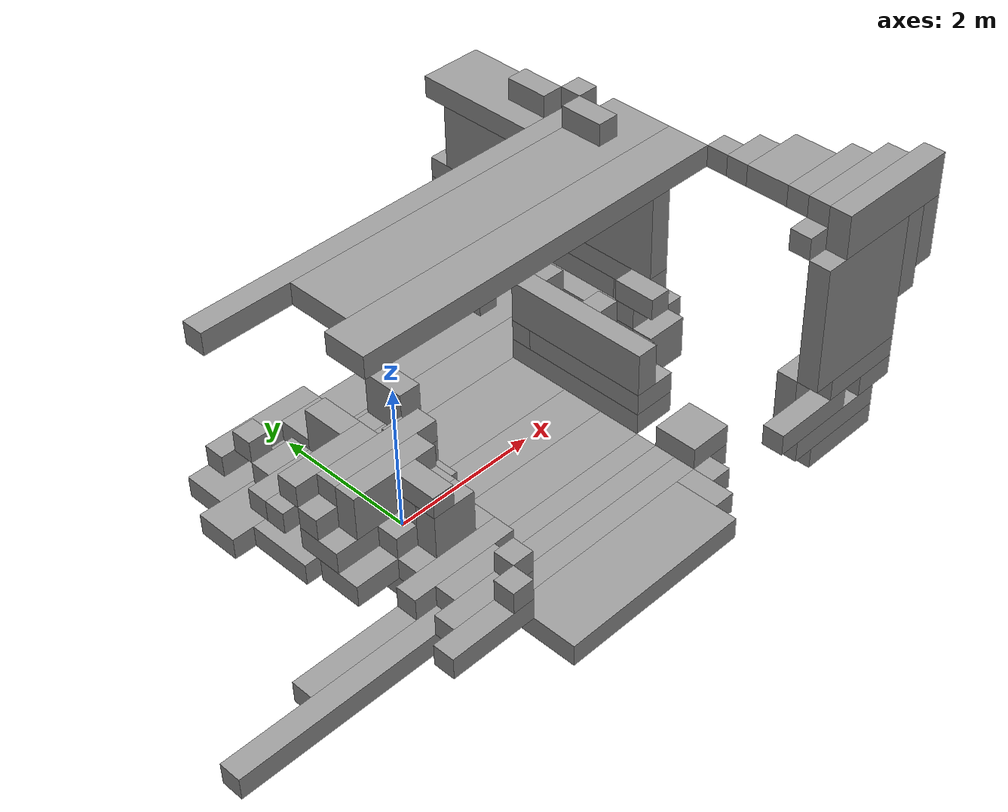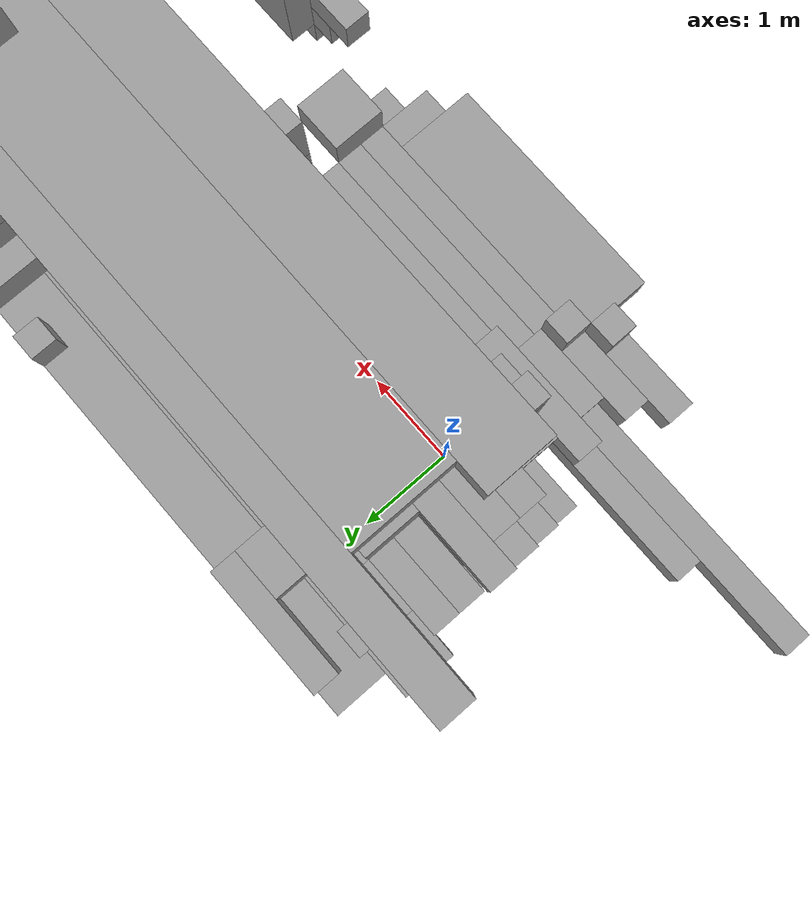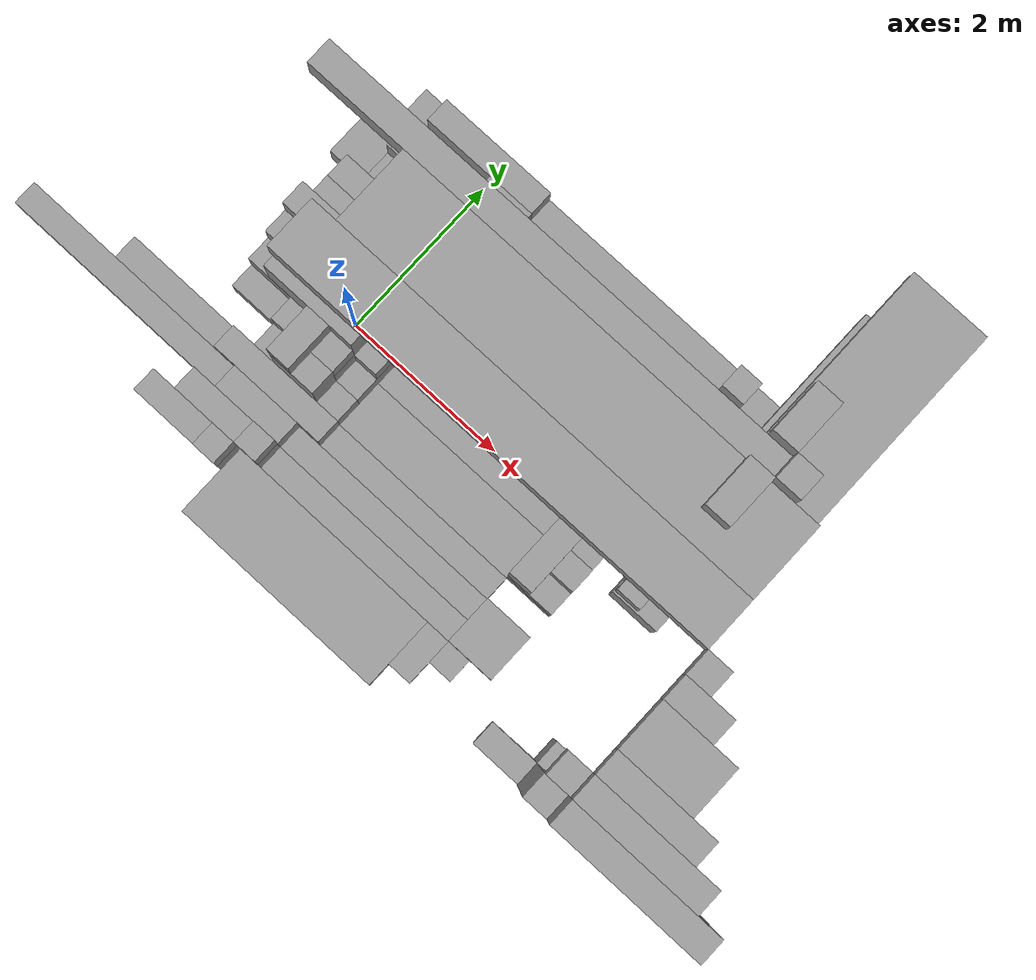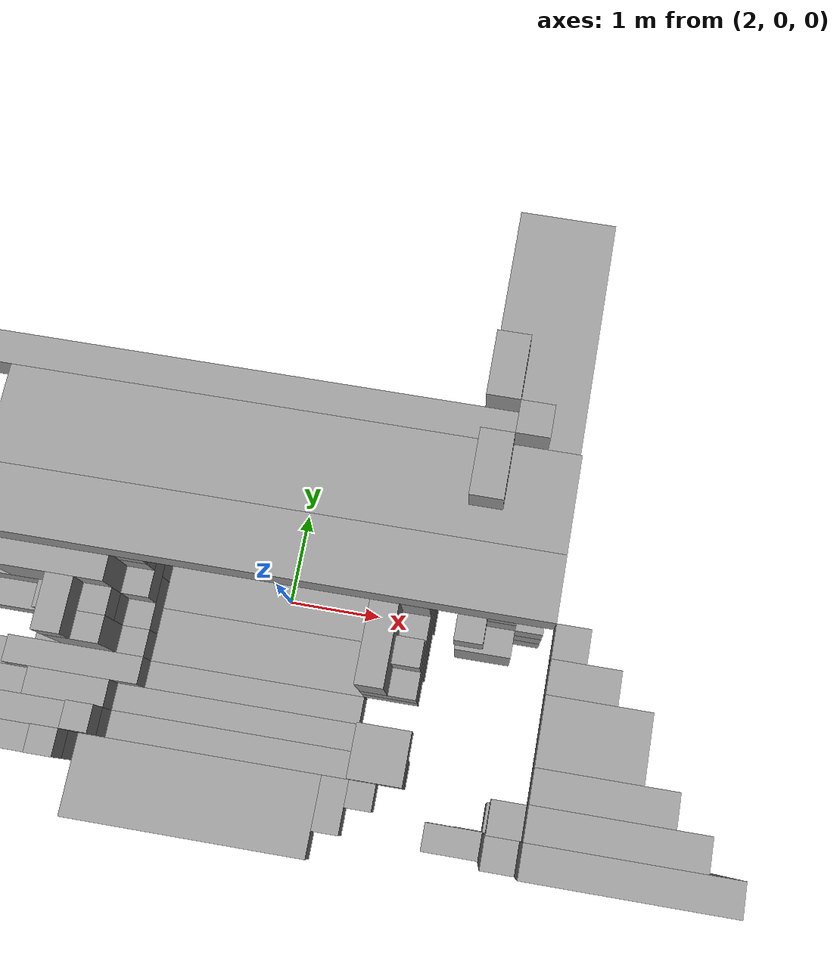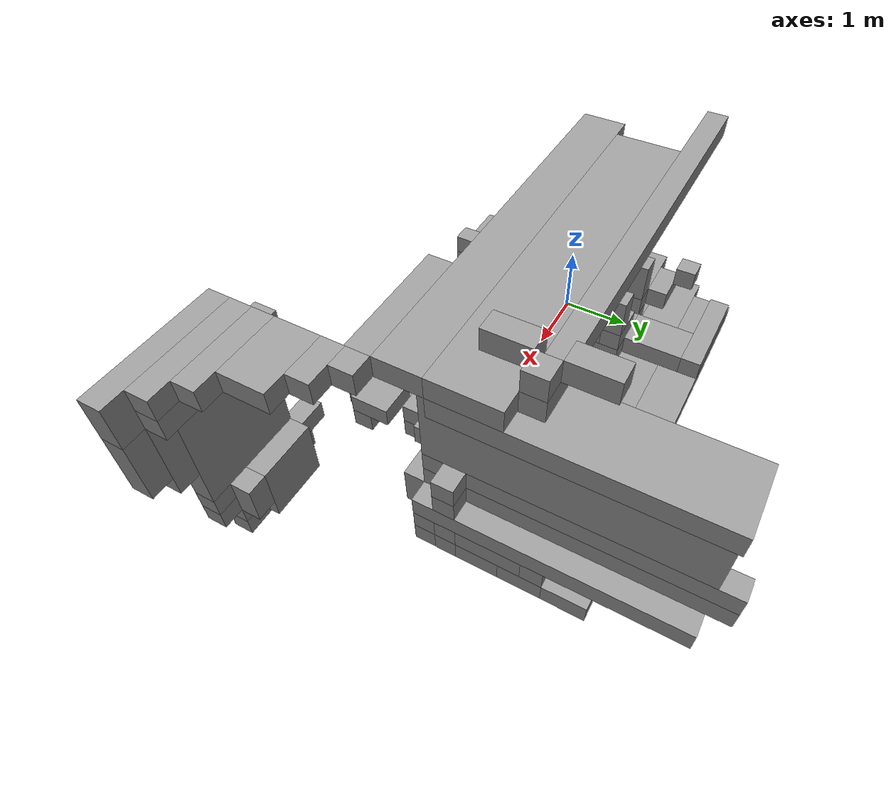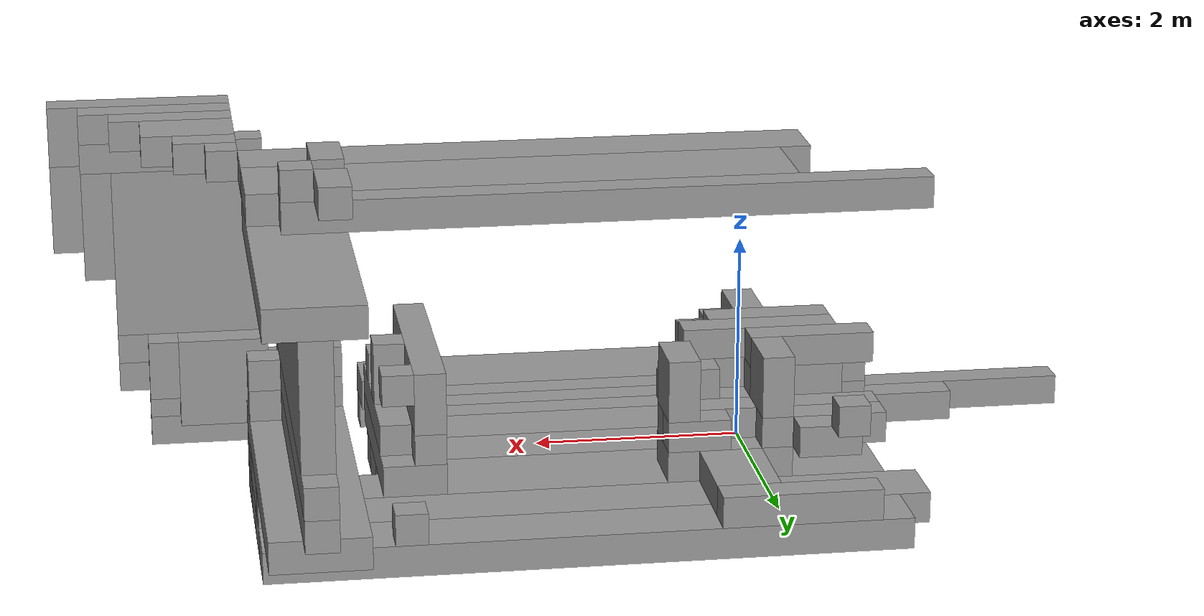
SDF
<sdf version="1.6">
 <world name="bt_world">
  <include><uri>model://sun</uri></include>
  <model name="obstacle_1845">
   <static>true</static>
   <pose>-0.3 -1.3499999999999999 -0.15 0 0 0</pose>
   <link name="link">
    <collision name="collision"><geometry><box><size>6.6 0.3 0.3</size></box></geometry></collision>
    <visual name="visual">
     <geometry><box><size>6.6 0.3 0.3</size></box></geometry>
     <material><ambient>0.5 0.5 0.5 1</ambient><diffuse>0.6 0.6 0.6 1</diffuse></material>
    </visual>
   </link>
  </model>
  <model name="obstacle_1883">
   <static>true</static>
   <pose>0.3 -1.05 -0.15 0 0 0</pose>
   <link name="link">
    <collision name="collision">
     <geometry><box><size>5.3999999999999995 0.3 0.3</size></box></geometry>
    </collision>
    <visual name="visual">
     <geometry><box><size>5.3999999999999995 0.3 0.3</size></box></geometry>
     <material><ambient>0.5 0.5 0.5 1</ambient><diffuse>0.6 0.6 0.6 1</diffuse></material>
    </visual>
   </link>
  </model>
  <model name="obstacle_1921">
   <static>true</static>
   <pose>1.65 1.5 -0.15 0 0 0</pose>
   <link name="link">
    <collision name="collision"><geometry><box><size>6.3 0.6 0.3</size></box></geometry></collision>
    <visual name="visual">
     <geometry><box><size>6.3 0.6 0.3</size></box></geometry>
     <material><ambient>0.5 0.5 0.5 1</ambient><diffuse>0.6 0.6 0.6 1</diffuse></material>
    </visual>
   </link>
  </model>
  <model name="obstacle_1924">
   <static>true</static>
   <pose>1.5 1.3499999999999999 2.85 0 0 0</pose>
   <link name="link">
    <collision name="collision"><geometry><box><size>6.0 0.3 0.3</size></box></geometry></collision>
    <visual name="visual">
     <geometry><box><size>6.0 0.3 0.3</size></box></geometry>
     <material><ambient>0.5 0.5 0.5 1</ambient><diffuse>0.6 0.6 0.6 1</diffuse></material>
    </visual>
   </link>
  </model>
  <model name="obstacle_1967">
   <static>true</static>
   <pose>-0.6 -1.95 0.15 0 0 0</pose>
   <link name="link">
    <collision name="collision"><geometry><box><size>1.2 0.3 0.3</size></box></geometry></collision>
    <visual name="visual">
     <geometry><box><size>1.2 0.3 0.3</size></box></geometry>
     <material><ambient>0.5 0.5 0.5 1</ambient><diffuse>0.6 0.6 0.6 1</diffuse></material>
    </visual>
   </link>
  </model>
  <model name="obstacle_1968">
   <static>true</static>
   <pose>-0.3 -0.3 0.15 0 0 0</pose>
   <link name="link">
    <collision name="collision">
     <geometry><box><size>1.7999999999999998 0.6 0.3</size></box></geometry>
    </collision>
    <visual name="visual">
     <geometry><box><size>1.7999999999999998 0.6 0.3</size></box></geometry>
     <material><ambient>0.5 0.5 0.5 1</ambient><diffuse>0.6 0.6 0.6 1</diffuse></material>
    </visual>
   </link>
  </model>
  <model name="obstacle_1969">
   <static>true</static>
   <pose>-0.3 0.0 0.44999999999999996 0 0 0</pose>
   <link name="link">
    <collision name="collision">
     <geometry><box><size>1.7999999999999998 0.6 0.3</size></box></geometry>
    </collision>
    <visual name="visual">
     <geometry><box><size>1.7999999999999998 0.6 0.3</size></box></geometry>
     <material><ambient>0.5 0.5 0.5 1</ambient><diffuse>0.6 0.6 0.6 1</diffuse></material>
    </visual>
   </link>
  </model>
  <model name="obstacle_1971">
   <static>true</static>
   <pose>-0.3 0.15 0.75 0 0 0</pose>
   <link name="link">
    <collision name="collision">
     <geometry><box><size>1.7999999999999998 0.3 0.3</size></box></geometry>
    </collision>
    <visual name="visual">
     <geometry><box><size>1.7999999999999998 0.3 0.3</size></box></geometry>
     <material><ambient>0.5 0.5 0.5 1</ambient><diffuse>0.6 0.6 0.6 1</diffuse></material>
    </visual>
   </link>
  </model>
  <model name="obstacle_1972">
   <static>true</static>
   <pose>1.2 0.75 -0.15 0 0 0</pose>
   <link name="link">
    <collision name="collision">
     <geometry><box><size>4.8 0.8999999999999999 0.3</size></box></geometry>
    </collision>
    <visual name="visual">
     <geometry><box><size>4.8 0.8999999999999999 0.3</size></box></geometry>
     <material><ambient>0.5 0.5 0.5 1</ambient><diffuse>0.6 0.6 0.6 1</diffuse></material>
    </visual>
   </link>
  </model>
  <model name="obstacle_1973">
   <static>true</static>
   <pose>-0.6 0.44999999999999996 1.05 0 0 0</pose>
   <link name="link">
    <collision name="collision"><geometry><box><size>1.2 0.3 0.3</size></box></geometry></collision>
    <visual name="visual">
     <geometry><box><size>1.2 0.3 0.3</size></box></geometry>
     <material><ambient>0.5 0.5 0.5 1</ambient><diffuse>0.6 0.6 0.6 1</diffuse></material>
    </visual>
   </link>
  </model>
  <model name="obstacle_1977">
   <static>true</static>
   <pose>-0.15 0.75 0.44999999999999996 0 0 0</pose>
   <link name="link">
    <collision name="collision"><geometry><box><size>2.1 0.3 0.3</size></box></geometry></collision>
    <visual name="visual">
     <geometry><box><size>2.1 0.3 0.3</size></box></geometry>
     <material><ambient>0.5 0.5 0.5 1</ambient><diffuse>0.6 0.6 0.6 1</diffuse></material>
    </visual>
   </link>
  </model>
  <model name="obstacle_1978">
   <static>true</static>
   <pose>-0.6 1.05 0.44999999999999996 0 0 0</pose>
   <link name="link">
    <collision name="collision"><geometry><box><size>1.2 0.3 0.3</size></box></geometry></collision>
    <visual name="visual">
     <geometry><box><size>1.2 0.3 0.3</size></box></geometry>
     <material><ambient>0.5 0.5 0.5 1</ambient><diffuse>0.6 0.6 0.6 1</diffuse></material>
    </visual>
   </link>
  </model>
  <model name="obstacle_1986">
   <static>true</static>
   <pose>1.7999999999999998 2.1 -0.15 0 0 0</pose>
   <link name="link">
    <collision name="collision"><geometry><box><size>6.0 0.6 0.3</size></box></geometry></collision>
    <visual name="visual">
     <geometry><box><size>6.0 0.6 0.3</size></box></geometry>
     <material><ambient>0.5 0.5 0.5 1</ambient><diffuse>0.6 0.6 0.6 1</diffuse></material>
    </visual>
   </link>
  </model>
  <model name="obstacle_2046">
   <static>true</static>
   <pose>-0.3 -1.65 0.15 0 0 0</pose>
   <link name="link">
    <collision name="collision"><geometry><box><size>1.2 0.3 0.3</size></box></geometry></collision>
    <visual name="visual">
     <geometry><box><size>1.2 0.3 0.3</size></box></geometry>
     <material><ambient>0.5 0.5 0.5 1</ambient><diffuse>0.6 0.6 0.6 1</diffuse></material>
    </visual>
   </link>
  </model>
  <model name="obstacle_2048">
   <static>true</static>
   <pose>-0.15 -1.05 0.15 0 0 0</pose>
   <link name="link">
    <collision name="collision"><geometry><box><size>1.5 0.3 0.3</size></box></geometry></collision>
    <visual name="visual">
     <geometry><box><size>1.5 0.3 0.3</size></box></geometry>
     <material><ambient>0.5 0.5 0.5 1</ambient><diffuse>0.6 0.6 0.6 1</diffuse></material>
    </visual>
   </link>
  </model>
  <model name="obstacle_2049">
   <static>true</static>
   <pose>1.3499999999999999 0.0 -0.15 0 0 0</pose>
   <link name="link">
    <collision name="collision"><geometry><box><size>4.5 0.6 0.3</size></box></geometry></collision>
    <visual name="visual">
     <geometry><box><size>4.5 0.6 0.3</size></box></geometry>
     <material><ambient>0.5 0.5 0.5 1</ambient><diffuse>0.6 0.6 0.6 1</diffuse></material>
    </visual>
   </link>
  </model>
  <model name="obstacle_2050">
   <static>true</static>
   <pose>-0.3 -0.15 0.8999999999999999 0 0 0</pose>
   <link name="link">
    <collision name="collision"><geometry><box><size>1.2 0.3 0.6</size></box></geometry></collision>
    <visual name="visual">
     <geometry><box><size>1.2 0.3 0.6</size></box></geometry>
     <material><ambient>0.5 0.5 0.5 1</ambient><diffuse>0.6 0.6 0.6 1</diffuse></material>
    </visual>
   </link>
  </model>
  <model name="obstacle_2053">
   <static>true</static>
   <pose>-0.15 0.15 1.05 0 0 0</pose>
   <link name="link">
    <collision name="collision"><geometry><box><size>1.5 0.3 0.3</size></box></geometry></collision>
    <visual name="visual">
     <geometry><box><size>1.5 0.3 0.3</size></box></geometry>
     <material><ambient>0.5 0.5 0.5 1</ambient><diffuse>0.6 0.6 0.6 1</diffuse></material>
    </visual>
   </link>
  </model>
  <model name="obstacle_2056">
   <static>true</static>
   <pose>-0.15 0.44999999999999996 0.44999999999999996 0 0 0</pose>
   <link name="link">
    <collision name="collision"><geometry><box><size>1.5 0.3 0.3</size></box></geometry></collision>
    <visual name="visual">
     <geometry><box><size>1.5 0.3 0.3</size></box></geometry>
     <material><ambient>0.5 0.5 0.5 1</ambient><diffuse>0.6 0.6 0.6 1</diffuse></material>
    </visual>
   </link>
  </model>
  <model name="obstacle_2057">
   <static>true</static>
   <pose>-0.44999999999999996 0.44999999999999996 0.75 0 0 0</pose>
   <link name="link">
    <collision name="collision">
     <geometry><box><size>0.8999999999999999 0.3 0.3</size></box></geometry>
    </collision>
    <visual name="visual">
     <geometry><box><size>0.8999999999999999 0.3 0.3</size></box></geometry>
     <material><ambient>0.5 0.5 0.5 1</ambient><diffuse>0.6 0.6 0.6 1</diffuse></material>
    </visual>
   </link>
  </model>
  <model name="obstacle_2059">
   <static>true</static>
   <pose>-0.75 1.05 -0.44999999999999996 0 0 0</pose>
   <link name="link">
    <collision name="collision"><geometry><box><size>0.3 0.3 0.3</size></box></geometry></collision>
    <visual name="visual">
     <geometry><box><size>0.3 0.3 0.3</size></box></geometry>
     <material><ambient>0.5 0.5 0.5 1</ambient><diffuse>0.6 0.6 0.6 1</diffuse></material>
    </visual>
   </link>
  </model>
  <model name="obstacle_2060">
   <static>true</static>
   <pose>-0.6 1.3499999999999999 0.44999999999999996 0 0 0</pose>
   <link name="link">
    <collision name="collision"><geometry><box><size>0.6 0.3 0.3</size></box></geometry></collision>
    <visual name="visual">
     <geometry><box><size>0.6 0.3 0.3</size></box></geometry>
     <material><ambient>0.5 0.5 0.5 1</ambient><diffuse>0.6 0.6 0.6 1</diffuse></material>
    </visual>
   </link>
  </model>
  <model name="obstacle_2061">
   <static>true</static>
   <pose>-0.75 1.65 0.75 0 0 0</pose>
   <link name="link">
    <collision name="collision"><geometry><box><size>0.3 0.3 0.3</size></box></geometry></collision>
    <visual name="visual">
     <geometry><box><size>0.3 0.3 0.3</size></box></geometry>
     <material><ambient>0.5 0.5 0.5 1</ambient><diffuse>0.6 0.6 0.6 1</diffuse></material>
    </visual>
   </link>
  </model>
  <model name="obstacle_2062">
   <static>true</static>
   <pose>-0.15 2.25 0.15 0 0 0</pose>
   <link name="link">
    <collision name="collision"><geometry><box><size>1.5 0.3 0.3</size></box></geometry></collision>
    <visual name="visual">
     <geometry><box><size>1.5 0.3 0.3</size></box></geometry>
     <material><ambient>0.5 0.5 0.5 1</ambient><diffuse>0.6 0.6 0.6 1</diffuse></material>
    </visual>
   </link>
  </model>
  <model name="obstacle_2101">
   <static>true</static>
   <pose>-0.15 -1.3499999999999999 0.15 0 0 0</pose>
   <link name="link">
    <collision name="collision">
     <geometry><box><size>0.8999999999999999 0.3 0.3</size></box></geometry>
    </collision>
    <visual name="visual">
     <geometry><box><size>0.8999999999999999 0.3 0.3</size></box></geometry>
     <material><ambient>0.5 0.5 0.5 1</ambient><diffuse>0.6 0.6 0.6 1</diffuse></material>
    </visual>
   </link>
  </model>
  <model name="obstacle_2102">
   <static>true</static>
   <pose>1.2 -0.6 -0.15 0 0 0</pose>
   <link name="link">
    <collision name="collision">
     <geometry><box><size>3.5999999999999996 0.6 0.3</size></box></geometry>
    </collision>
    <visual name="visual">
     <geometry><box><size>3.5999999999999996 0.6 0.3</size></box></geometry>
     <material><ambient>0.5 0.5 0.5 1</ambient><diffuse>0.6 0.6 0.6 1</diffuse></material>
    </visual>
   </link>
  </model>
  <model name="obstacle_2103">
   <static>true</static>
   <pose>0.0 -0.75 0.15 0 0 0</pose>
   <link name="link">
    <collision name="collision"><geometry><box><size>1.2 0.3 0.3</size></box></geometry></collision>
    <visual name="visual">
     <geometry><box><size>1.2 0.3 0.3</size></box></geometry>
     <material><ambient>0.5 0.5 0.5 1</ambient><diffuse>0.6 0.6 0.6 1</diffuse></material>
    </visual>
   </link>
  </model>
  <model name="obstacle_2104">
   <static>true</static>
   <pose>-0.15 -0.44999999999999996 0.44999999999999996 0 0 0</pose>
   <link name="link">
    <collision name="collision">
     <geometry><box><size>0.8999999999999999 0.3 0.3</size></box></geometry>
    </collision>
    <visual name="visual">
     <geometry><box><size>0.8999999999999999 0.3 0.3</size></box></geometry>
     <material><ambient>0.5 0.5 0.5 1</ambient><diffuse>0.6 0.6 0.6 1</diffuse></material>
    </visual>
   </link>
  </model>
  <model name="obstacle_2105">
   <static>true</static>
   <pose>2.1 0.0 2.85 0 0 0</pose>
   <link name="link">
    <collision name="collision">
     <geometry><box><size>5.3999999999999995 0.6 0.3</size></box></geometry>
    </collision>
    <visual name="visual">
     <geometry><box><size>5.3999999999999995 0.6 0.3</size></box></geometry>
     <material><ambient>0.5 0.5 0.5 1</ambient><diffuse>0.6 0.6 0.6 1</diffuse></material>
    </visual>
   </link>
  </model>
  <model name="obstacle_2122">
   <static>true</static>
   <pose>-0.15 -1.95 0.44999999999999996 0 0 0</pose>
   <link name="link">
    <collision name="collision"><geometry><box><size>0.3 0.3 0.3</size></box></geometry></collision>
    <visual name="visual">
     <geometry><box><size>0.3 0.3 0.3</size></box></geometry>
     <material><ambient>0.5 0.5 0.5 1</ambient><diffuse>0.6 0.6 0.6 1</diffuse></material>
    </visual>
   </link>
  </model>
  <model name="obstacle_2123">
   <static>true</static>
   <pose>1.65 -1.65 -0.15 0 0 0</pose>
   <link name="link">
    <collision name="collision"><geometry><box><size>3.9 0.3 0.3</size></box></geometry></collision>
    <visual name="visual">
     <geometry><box><size>3.9 0.3 0.3</size></box></geometry>
     <material><ambient>0.5 0.5 0.5 1</ambient><diffuse>0.6 0.6 0.6 1</diffuse></material>
    </visual>
   </link>
  </model>
  <model name="obstacle_2124">
   <static>true</static>
   <pose>0.0 -0.75 0.6 0 0 0</pose>
   <link name="link">
    <collision name="collision"><geometry><box><size>0.6 0.3 0.6</size></box></geometry></collision>
    <visual name="visual">
     <geometry><box><size>0.6 0.3 0.6</size></box></geometry>
     <material><ambient>0.5 0.5 0.5 1</ambient><diffuse>0.6 0.6 0.6 1</diffuse></material>
    </visual>
   </link>
  </model>
  <model name="obstacle_2125">
   <static>true</static>
   <pose>-0.15 -0.6 1.05 0 0 0</pose>
   <link name="link">
    <collision name="collision"><geometry><box><size>0.3 0.6 0.3</size></box></geometry></collision>
    <visual name="visual">
     <geometry><box><size>0.3 0.6 0.3</size></box></geometry>
     <material><ambient>0.5 0.5 0.5 1</ambient><diffuse>0.6 0.6 0.6 1</diffuse></material>
    </visual>
   </link>
  </model>
  <model name="obstacle_2126">
   <static>true</static>
   <pose>0.0 -0.44999999999999996 0.75 0 0 0</pose>
   <link name="link">
    <collision name="collision"><geometry><box><size>0.6 0.3 0.3</size></box></geometry></collision>
    <visual name="visual">
     <geometry><box><size>0.6 0.3 0.3</size></box></geometry>
     <material><ambient>0.5 0.5 0.5 1</ambient><diffuse>0.6 0.6 0.6 1</diffuse></material>
    </visual>
   </link>
  </model>
  <model name="obstacle_2127">
   <static>true</static>
   <pose>0.0 0.15 -0.44999999999999996 0 0 0</pose>
   <link name="link">
    <collision name="collision"><geometry><box><size>0.6 0.3 0.3</size></box></geometry></collision>
    <visual name="visual">
     <geometry><box><size>0.6 0.3 0.3</size></box></geometry>
     <material><ambient>0.5 0.5 0.5 1</ambient><diffuse>0.6 0.6 0.6 1</diffuse></material>
    </visual>
   </link>
  </model>
  <model name="obstacle_2128">
   <static>true</static>
   <pose>0.15 0.15 0.15 0 0 0</pose>
   <link name="link">
    <collision name="collision">
     <geometry><box><size>0.8999999999999999 0.3 0.3</size></box></geometry>
    </collision>
    <visual name="visual">
     <geometry><box><size>0.8999999999999999 0.3 0.3</size></box></geometry>
     <material><ambient>0.5 0.5 0.5 1</ambient><diffuse>0.6 0.6 0.6 1</diffuse></material>
    </visual>
   </link>
  </model>
  <model name="obstacle_2129">
   <static>true</static>
   <pose>2.25 0.75 2.85 0 0 0</pose>
   <link name="link">
    <collision name="collision">
     <geometry><box><size>5.1 0.8999999999999999 0.3</size></box></geometry>
    </collision>
    <visual name="visual">
     <geometry><box><size>5.1 0.8999999999999999 0.3</size></box></geometry>
     <material><ambient>0.5 0.5 0.5 1</ambient><diffuse>0.6 0.6 0.6 1</diffuse></material>
    </visual>
   </link>
  </model>
  <model name="obstacle_2130">
   <static>true</static>
   <pose>-0.15 0.75 -0.44999999999999996 0 0 0</pose>
   <link name="link">
    <collision name="collision"><geometry><box><size>0.3 0.3 0.3</size></box></geometry></collision>
    <visual name="visual">
     <geometry><box><size>0.3 0.3 0.3</size></box></geometry>
     <material><ambient>0.5 0.5 0.5 1</ambient><diffuse>0.6 0.6 0.6 1</diffuse></material>
    </visual>
   </link>
  </model>
  <model name="obstacle_2131">
   <static>true</static>
   <pose>0.3 0.8999999999999999 0.15 0 0 0</pose>
   <link name="link">
    <collision name="collision"><geometry><box><size>1.2 0.6 0.3</size></box></geometry></collision>
    <visual name="visual">
     <geometry><box><size>1.2 0.6 0.3</size></box></geometry>
     <material><ambient>0.5 0.5 0.5 1</ambient><diffuse>0.6 0.6 0.6 1</diffuse></material>
    </visual>
   </link>
  </model>
  <model name="obstacle_2132">
   <static>true</static>
   <pose>-0.15 0.8999999999999999 0.8999999999999999 0 0 0</pose>
   <link name="link">
    <collision name="collision"><geometry><box><size>0.3 0.6 0.6</size></box></geometry></collision>
    <visual name="visual">
     <geometry><box><size>0.3 0.6 0.6</size></box></geometry>
     <material><ambient>0.5 0.5 0.5 1</ambient><diffuse>0.6 0.6 0.6 1</diffuse></material>
    </visual>
   </link>
  </model>
  <model name="obstacle_2149">
   <static>true</static>
   <pose>1.3499999999999999 -2.25 -0.15 0 0 0</pose>
   <link name="link">
    <collision name="collision">
     <geometry><box><size>2.6999999999999997 0.8999999999999999 0.3</size></box></geometry>
    </collision>
    <visual name="visual">
     <geometry><box><size>2.6999999999999997 0.8999999999999999 0.3</size></box></geometry>
     <material><ambient>0.5 0.5 0.5 1</ambient><diffuse>0.6 0.6 0.6 1</diffuse></material>
    </visual>
   </link>
  </model>
  <model name="obstacle_2150">
   <static>true</static>
   <pose>0.15 -1.65 0.44999999999999996 0 0 0</pose>
   <link name="link">
    <collision name="collision"><geometry><box><size>0.3 0.3 0.3</size></box></geometry></collision>
    <visual name="visual">
     <geometry><box><size>0.3 0.3 0.3</size></box></geometry>
     <material><ambient>0.5 0.5 0.5 1</ambient><diffuse>0.6 0.6 0.6 1</diffuse></material>
    </visual>
   </link>
  </model>
  <model name="obstacle_2151">
   <static>true</static>
   <pose>0.15 -0.15 -0.44999999999999996 0 0 0</pose>
   <link name="link">
    <collision name="collision"><geometry><box><size>0.3 0.3 0.3</size></box></geometry></collision>
    <visual name="visual">
     <geometry><box><size>0.3 0.3 0.3</size></box></geometry>
     <material><ambient>0.5 0.5 0.5 1</ambient><diffuse>0.6 0.6 0.6 1</diffuse></material>
    </visual>
   </link>
  </model>
  <model name="obstacle_2152">
   <static>true</static>
   <pose>0.3 0.44999999999999996 0.15 0 0 0</pose>
   <link name="link">
    <collision name="collision"><geometry><box><size>0.6 0.3 0.3</size></box></geometry></collision>
    <visual name="visual">
     <geometry><box><size>0.6 0.3 0.3</size></box></geometry>
     <material><ambient>0.5 0.5 0.5 1</ambient><diffuse>0.6 0.6 0.6 1</diffuse></material>
    </visual>
   </link>
  </model>
  <model name="obstacle_2153">
   <static>true</static>
   <pose>0.3 1.65 0.15 0 0 0</pose>
   <link name="link">
    <collision name="collision">
     <geometry><box><size>0.6 0.8999999999999999 0.3</size></box></geometry>
    </collision>
    <visual name="visual">
     <geometry><box><size>0.6 0.8999999999999999 0.3</size></box></geometry>
     <material><ambient>0.5 0.5 0.5 1</ambient><diffuse>0.6 0.6 0.6 1</diffuse></material>
    </visual>
   </link>
  </model>
  <model name="obstacle_2166">
   <static>true</static>
   <pose>0.44999999999999996 0.44999999999999996 0.75 0 0 0</pose>
   <link name="link">
    <collision name="collision"><geometry><box><size>0.3 0.3 0.3</size></box></geometry></collision>
    <visual name="visual">
     <geometry><box><size>0.3 0.3 0.3</size></box></geometry>
     <material><ambient>0.5 0.5 0.5 1</ambient><diffuse>0.6 0.6 0.6 1</diffuse></material>
    </visual>
   </link>
  </model>
  <model name="obstacle_2167">
   <static>true</static>
   <pose>0.6 1.05 0.44999999999999996 0 0 0</pose>
   <link name="link">
    <collision name="collision"><geometry><box><size>0.6 0.3 0.3</size></box></geometry></collision>
    <visual name="visual">
     <geometry><box><size>0.6 0.3 0.3</size></box></geometry>
     <material><ambient>0.5 0.5 0.5 1</ambient><diffuse>0.6 0.6 0.6 1</diffuse></material>
    </visual>
   </link>
  </model>
  <model name="obstacle_2191">
   <static>true</static>
   <pose>0.75 0.75 -0.44999999999999996 0 0 0</pose>
   <link name="link">
    <collision name="collision"><geometry><box><size>0.3 0.3 0.3</size></box></geometry></collision>
    <visual name="visual">
     <geometry><box><size>0.3 0.3 0.3</size></box></geometry>
     <material><ambient>0.5 0.5 0.5 1</ambient><diffuse>0.6 0.6 0.6 1</diffuse></material>
    </visual>
   </link>
  </model>
  <model name="obstacle_2192">
   <static>true</static>
   <pose>0.75 0.8999999999999999 0.8999999999999999 0 0 0</pose>
   <link name="link">
    <collision name="collision"><geometry><box><size>0.3 0.6 0.6</size></box></geometry></collision>
    <visual name="visual">
     <geometry><box><size>0.3 0.6 0.6</size></box></geometry>
     <material><ambient>0.5 0.5 0.5 1</ambient><diffuse>0.6 0.6 0.6 1</diffuse></material>
    </visual>
   </link>
  </model>
  <model name="obstacle_2293">
   <static>true</static>
   <pose>2.85 -2.1 -0.15 0 0 0</pose>
   <link name="link">
    <collision name="collision"><geometry><box><size>0.3 0.6 0.3</size></box></geometry></collision>
    <visual name="visual">
     <geometry><box><size>0.3 0.6 0.3</size></box></geometry>
     <material><ambient>0.5 0.5 0.5 1</ambient><diffuse>0.6 0.6 0.6 1</diffuse></material>
    </visual>
   </link>
  </model>
  <model name="obstacle_2326">
   <static>true</static>
   <pose>3.15 -1.95 -0.15 0 0 0</pose>
   <link name="link">
    <collision name="collision"><geometry><box><size>0.3 0.3 0.3</size></box></geometry></collision>
    <visual name="visual">
     <geometry><box><size>0.3 0.3 0.3</size></box></geometry>
     <material><ambient>0.5 0.5 0.5 1</ambient><diffuse>0.6 0.6 0.6 1</diffuse></material>
    </visual>
   </link>
  </model>
  <model name="obstacle_2327">
   <static>true</static>
   <pose>3.3 -1.5 0.15 0 0 0</pose>
   <link name="link">
    <collision name="collision"><geometry><box><size>0.6 0.6 0.3</size></box></geometry></collision>
    <visual name="visual">
     <geometry><box><size>0.6 0.6 0.3</size></box></geometry>
     <material><ambient>0.5 0.5 0.5 1</ambient><diffuse>0.6 0.6 0.6 1</diffuse></material>
    </visual>
   </link>
  </model>
  <model name="obstacle_2328">
   <static>true</static>
   <pose>3.3 0.15 0.15 0 0 0</pose>
   <link name="link">
    <collision name="collision"><geometry><box><size>0.6 2.1 0.3</size></box></geometry></collision>
    <visual name="visual">
     <geometry><box><size>0.6 2.1 0.3</size></box></geometry>
     <material><ambient>0.5 0.5 0.5 1</ambient><diffuse>0.6 0.6 0.6 1</diffuse></material>
    </visual>
   </link>
  </model>
  <model name="obstacle_2329">
   <static>true</static>
   <pose>3.3 0.0 0.44999999999999996 0 0 0</pose>
   <link name="link">
    <collision name="collision">
     <geometry><box><size>0.6 1.7999999999999998 0.3</size></box></geometry>
    </collision>
    <visual name="visual">
     <geometry><box><size>0.6 1.7999999999999998 0.3</size></box></geometry>
     <material><ambient>0.5 0.5 0.5 1</ambient><diffuse>0.6 0.6 0.6 1</diffuse></material>
    </visual>
   </link>
  </model>
  <model name="obstacle_2330">
   <static>true</static>
   <pose>3.15 0.15 0.8999999999999999 0 0 0</pose>
   <link name="link">
    <collision name="collision"><geometry><box><size>0.3 2.1 0.6</size></box></geometry></collision>
    <visual name="visual">
     <geometry><box><size>0.3 2.1 0.6</size></box></geometry>
     <material><ambient>0.5 0.5 0.5 1</ambient><diffuse>0.6 0.6 0.6 1</diffuse></material>
    </visual>
   </link>
  </model>
  <model name="obstacle_2331">
   <static>true</static>
   <pose>3.15 -0.44999999999999996 -0.3 0 0 0</pose>
   <link name="link">
    <collision name="collision"><geometry><box><size>0.3 0.3 0.6</size></box></geometry></collision>
    <visual name="visual">
     <geometry><box><size>0.3 0.3 0.6</size></box></geometry>
     <material><ambient>0.5 0.5 0.5 1</ambient><diffuse>0.6 0.6 0.6 1</diffuse></material>
    </visual>
   </link>
  </model>
  <model name="obstacle_2332">
   <static>true</static>
   <pose>3.3 0.15 -0.44999999999999996 0 0 0</pose>
   <link name="link">
    <collision name="collision"><geometry><box><size>0.6 0.3 0.3</size></box></geometry></collision>
    <visual name="visual">
     <geometry><box><size>0.6 0.3 0.3</size></box></geometry>
     <material><ambient>0.5 0.5 0.5 1</ambient><diffuse>0.6 0.6 0.6 1</diffuse></material>
    </visual>
   </link>
  </model>
  <model name="obstacle_2333">
   <static>true</static>
   <pose>3.15 0.75 -0.44999999999999996 0 0 0</pose>
   <link name="link">
    <collision name="collision"><geometry><box><size>0.3 0.3 0.3</size></box></geometry></collision>
    <visual name="visual">
     <geometry><box><size>0.3 0.3 0.3</size></box></geometry>
     <material><ambient>0.5 0.5 0.5 1</ambient><diffuse>0.6 0.6 0.6 1</diffuse></material>
    </visual>
   </link>
  </model>
  <model name="obstacle_2334">
   <static>true</static>
   <pose>3.15 1.05 0.44999999999999996 0 0 0</pose>
   <link name="link">
    <collision name="collision"><geometry><box><size>0.3 0.3 0.3</size></box></geometry></collision>
    <visual name="visual">
     <geometry><box><size>0.3 0.3 0.3</size></box></geometry>
     <material><ambient>0.5 0.5 0.5 1</ambient><diffuse>0.6 0.6 0.6 1</diffuse></material>
    </visual>
   </link>
  </model>
  <model name="obstacle_2358">
   <static>true</static>
   <pose>3.4499999999999997 -0.44999999999999996 -0.15 0 0 0</pose>
   <link name="link">
    <collision name="collision"><geometry><box><size>0.3 0.3 0.3</size></box></geometry></collision>
    <visual name="visual">
     <geometry><box><size>0.3 0.3 0.3</size></box></geometry>
     <material><ambient>0.5 0.5 0.5 1</ambient><diffuse>0.6 0.6 0.6 1</diffuse></material>
    </visual>
   </link>
  </model>
  <model name="obstacle_2359">
   <static>true</static>
   <pose>3.4499999999999997 -0.44999999999999996 0.75 0 0 0</pose>
   <link name="link">
    <collision name="collision"><geometry><box><size>0.3 0.3 0.3</size></box></geometry></collision>
    <visual name="visual">
     <geometry><box><size>0.3 0.3 0.3</size></box></geometry>
     <material><ambient>0.5 0.5 0.5 1</ambient><diffuse>0.6 0.6 0.6 1</diffuse></material>
    </visual>
   </link>
  </model>
  <model name="obstacle_2360">
   <static>true</static>
   <pose>3.4499999999999997 0.15 0.8999999999999999 0 0 0</pose>
   <link name="link">
    <collision name="collision"><geometry><box><size>0.3 0.3 0.6</size></box></geometry></collision>
    <visual name="visual">
     <geometry><box><size>0.3 0.3 0.6</size></box></geometry>
     <material><ambient>0.5 0.5 0.5 1</ambient><diffuse>0.6 0.6 0.6 1</diffuse></material>
    </visual>
   </link>
  </model>
  <model name="obstacle_2361">
   <static>true</static>
   <pose>3.4499999999999997 1.05 1.05 0 0 0</pose>
   <link name="link">
    <collision name="collision"><geometry><box><size>0.3 0.3 0.3</size></box></geometry></collision>
    <visual name="visual">
     <geometry><box><size>0.3 0.3 0.3</size></box></geometry>
     <material><ambient>0.5 0.5 0.5 1</ambient><diffuse>0.6 0.6 0.6 1</diffuse></material>
    </visual>
   </link>
  </model>
  <model name="obstacle_2362">
   <static>true</static>
   <pose>3.4499999999999997 2.25 0.15 0 0 0</pose>
   <link name="link">
    <collision name="collision"><geometry><box><size>0.3 0.3 0.3</size></box></geometry></collision>
    <visual name="visual">
     <geometry><box><size>0.3 0.3 0.3</size></box></geometry>
     <material><ambient>0.5 0.5 0.5 1</ambient><diffuse>0.6 0.6 0.6 1</diffuse></material>
    </visual>
   </link>
  </model>
  <model name="obstacle_2382">
   <static>true</static>
   <pose>4.2 0.8999999999999999 -0.15 0 0 0</pose>
   <link name="link">
    <collision name="collision"><geometry><box><size>1.2 0.6 0.3</size></box></geometry></collision>
    <visual name="visual">
     <geometry><box><size>1.2 0.6 0.3</size></box></geometry>
     <material><ambient>0.5 0.5 0.5 1</ambient><diffuse>0.6 0.6 0.6 1</diffuse></material>
    </visual>
   </link>
  </model>
  <model name="obstacle_2403">
   <static>true</static>
   <pose>4.5 -2.25 0.15 0 0 0</pose>
   <link name="link">
    <collision name="collision"><geometry><box><size>1.2 0.3 0.3</size></box></geometry></collision>
    <visual name="visual">
     <geometry><box><size>1.2 0.3 0.3</size></box></geometry>
     <material><ambient>0.5 0.5 0.5 1</ambient><diffuse>0.6 0.6 0.6 1</diffuse></material>
    </visual>
   </link>
  </model>
  <model name="obstacle_2404">
   <static>true</static>
   <pose>4.2 -0.15 0.3 0 0 0</pose>
   <link name="link">
    <collision name="collision"><geometry><box><size>0.6 0.3 0.6</size></box></geometry></collision>
    <visual name="visual">
     <geometry><box><size>0.6 0.3 0.6</size></box></geometry>
     <material><ambient>0.5 0.5 0.5 1</ambient><diffuse>0.6 0.6 0.6 1</diffuse></material>
    </visual>
   </link>
  </model>
  <model name="obstacle_2405">
   <static>true</static>
   <pose>4.05 0.0 1.05 0 0 0</pose>
   <link name="link">
    <collision name="collision"><geometry><box><size>0.3 0.6 0.3</size></box></geometry></collision>
    <visual name="visual">
     <geometry><box><size>0.3 0.6 0.3</size></box></geometry>
     <material><ambient>0.5 0.5 0.5 1</ambient><diffuse>0.6 0.6 0.6 1</diffuse></material>
    </visual>
   </link>
  </model>
  <model name="obstacle_2406">
   <static>true</static>
   <pose>4.2 0.15 -0.3 0 0 0</pose>
   <link name="link">
    <collision name="collision"><geometry><box><size>0.6 0.3 0.6</size></box></geometry></collision>
    <visual name="visual">
     <geometry><box><size>0.6 0.3 0.6</size></box></geometry>
     <material><ambient>0.5 0.5 0.5 1</ambient><diffuse>0.6 0.6 0.6 1</diffuse></material>
    </visual>
   </link>
  </model>
  <model name="obstacle_2407">
   <static>true</static>
   <pose>4.35 1.7999999999999998 0.44999999999999996 0 0 0</pose>
   <link name="link">
    <collision name="collision">
     <geometry><box><size>0.8999999999999999 3.5999999999999996 0.3</size></box></geometry>
    </collision>
    <visual name="visual">
     <geometry><box><size>0.8999999999999999 3.5999999999999996 0.3</size></box></geometry>
     <material><ambient>0.5 0.5 0.5 1</ambient><diffuse>0.6 0.6 0.6 1</diffuse></material>
    </visual>
   </link>
  </model>
  <model name="obstacle_2408">
   <static>true</static>
   <pose>4.2 0.15 0.75 0 0 0</pose>
   <link name="link">
    <collision name="collision"><geometry><box><size>0.6 0.3 0.3</size></box></geometry></collision>
    <visual name="visual">
     <geometry><box><size>0.6 0.3 0.3</size></box></geometry>
     <material><ambient>0.5 0.5 0.5 1</ambient><diffuse>0.6 0.6 0.6 1</diffuse></material>
    </visual>
   </link>
  </model>
  <model name="obstacle_2409">
   <static>true</static>
   <pose>4.35 0.44999999999999996 -0.15 0 0 0</pose>
   <link name="link">
    <collision name="collision">
     <geometry><box><size>0.8999999999999999 0.3 0.3</size></box></geometry>
    </collision>
    <visual name="visual">
     <geometry><box><size>0.8999999999999999 0.3 0.3</size></box></geometry>
     <material><ambient>0.5 0.5 0.5 1</ambient><diffuse>0.6 0.6 0.6 1</diffuse></material>
    </visual>
   </link>
  </model>
  <model name="obstacle_2410">
   <static>true</static>
   <pose>4.35 1.95 2.55 0 0 0</pose>
   <link name="link">
    <collision name="collision">
     <geometry><box><size>0.8999999999999999 3.3 0.3</size></box></geometry>
    </collision>
    <visual name="visual">
     <geometry><box><size>0.8999999999999999 3.3 0.3</size></box></geometry>
     <material><ambient>0.5 0.5 0.5 1</ambient><diffuse>0.6 0.6 0.6 1</diffuse></material>
    </visual>
   </link>
  </model>
  <model name="obstacle_2411">
   <static>true</static>
   <pose>4.05 0.8999999999999999 3.15 0 0 0</pose>
   <link name="link">
    <collision name="collision"><geometry><box><size>0.3 0.6 0.3</size></box></geometry></collision>
    <visual name="visual">
     <geometry><box><size>0.3 0.6 0.3</size></box></geometry>
     <material><ambient>0.5 0.5 0.5 1</ambient><diffuse>0.6 0.6 0.6 1</diffuse></material>
    </visual>
   </link>
  </model>
  <model name="obstacle_2412">
   <static>true</static>
   <pose>4.05 1.7999999999999998 3.15 0 0 0</pose>
   <link name="link">
    <collision name="collision"><geometry><box><size>0.3 0.6 0.3</size></box></geometry></collision>
    <visual name="visual">
     <geometry><box><size>0.3 0.6 0.3</size></box></geometry>
     <material><ambient>0.5 0.5 0.5 1</ambient><diffuse>0.6 0.6 0.6 1</diffuse></material>
    </visual>
   </link>
  </model>
  <model name="obstacle_2492">
   <static>true</static>
   <pose>4.95 -2.25 -0.15 0 0 0</pose>
   <link name="link">
    <collision name="collision"><geometry><box><size>1.5 0.3 0.3</size></box></geometry></collision>
    <visual name="visual">
     <geometry><box><size>1.5 0.3 0.3</size></box></geometry>
     <material><ambient>0.5 0.5 0.5 1</ambient><diffuse>0.6 0.6 0.6 1</diffuse></material>
    </visual>
   </link>
  </model>
  <model name="obstacle_2493">
   <static>true</static>
   <pose>4.5 0.15 0.15 0 0 0</pose>
   <link name="link">
    <collision name="collision"><geometry><box><size>0.6 0.3 0.3</size></box></geometry></collision>
    <visual name="visual">
     <geometry><box><size>0.6 0.3 0.3</size></box></geometry>
     <material><ambient>0.5 0.5 0.5 1</ambient><diffuse>0.6 0.6 0.6 1</diffuse></material>
    </visual>
   </link>
  </model>
  <model name="obstacle_2494">
   <static>true</static>
   <pose>4.35 1.95 1.05 0 0 0</pose>
   <link name="link">
    <collision name="collision"><geometry><box><size>0.3 3.9 0.3</size></box></geometry></collision>
    <visual name="visual">
     <geometry><box><size>0.3 3.9 0.3</size></box></geometry>
     <material><ambient>0.5 0.5 0.5 1</ambient><diffuse>0.6 0.6 0.6 1</diffuse></material>
    </visual>
   </link>
  </model>
  <model name="obstacle_2495">
   <static>true</static>
   <pose>4.35 1.7999999999999998 1.7999999999999998 0 0 0</pose>
   <link name="link">
    <collision name="collision">
     <geometry><box><size>0.3 3.5999999999999996 1.2</size></box></geometry>
    </collision>
    <visual name="visual">
     <geometry><box><size>0.3 3.5999999999999996 1.2</size></box></geometry>
     <material><ambient>0.5 0.5 0.5 1</ambient><diffuse>0.6 0.6 0.6 1</diffuse></material>
    </visual>
   </link>
  </model>
  <model name="obstacle_2496">
   <static>true</static>
   <pose>4.35 0.15 2.55 0 0 0</pose>
   <link name="link">
    <collision name="collision"><geometry><box><size>0.3 0.3 0.3</size></box></geometry></collision>
    <visual name="visual">
     <geometry><box><size>0.3 0.3 0.3</size></box></geometry>
     <material><ambient>0.5 0.5 0.5 1</ambient><diffuse>0.6 0.6 0.6 1</diffuse></material>
    </visual>
   </link>
  </model>
  <model name="obstacle_2497">
   <static>true</static>
   <pose>4.5 0.44999999999999996 0.75 0 0 0</pose>
   <link name="link">
    <collision name="collision"><geometry><box><size>0.6 0.3 0.3</size></box></geometry></collision>
    <visual name="visual">
     <geometry><box><size>0.6 0.3 0.3</size></box></geometry>
     <material><ambient>0.5 0.5 0.5 1</ambient><diffuse>0.6 0.6 0.6 1</diffuse></material>
    </visual>
   </link>
  </model>
  <model name="obstacle_2498">
   <static>true</static>
   <pose>4.35 1.05 -0.44999999999999996 0 0 0</pose>
   <link name="link">
    <collision name="collision">
     <geometry><box><size>0.3 0.8999999999999999 0.3</size></box></geometry>
    </collision>
    <visual name="visual">
     <geometry><box><size>0.3 0.8999999999999999 0.3</size></box></geometry>
     <material><ambient>0.5 0.5 0.5 1</ambient><diffuse>0.6 0.6 0.6 1</diffuse></material>
    </visual>
   </link>
  </model>
  <model name="obstacle_2499">
   <static>true</static>
   <pose>4.5 1.05 0.15 0 0 0</pose>
   <link name="link">
    <collision name="collision">
     <geometry><box><size>0.6 0.8999999999999999 0.3</size></box></geometry>
    </collision>
    <visual name="visual">
     <geometry><box><size>0.6 0.8999999999999999 0.3</size></box></geometry>
     <material><ambient>0.5 0.5 0.5 1</ambient><diffuse>0.6 0.6 0.6 1</diffuse></material>
    </visual>
   </link>
  </model>
  <model name="obstacle_2500">
   <static>true</static>
   <pose>4.35 2.25 0.75 0 0 0</pose>
   <link name="link">
    <collision name="collision"><geometry><box><size>0.3 3.3 0.3</size></box></geometry></collision>
    <visual name="visual">
     <geometry><box><size>0.3 3.3 0.3</size></box></geometry>
     <material><ambient>0.5 0.5 0.5 1</ambient><diffuse>0.6 0.6 0.6 1</diffuse></material>
    </visual>
   </link>
  </model>
  <model name="obstacle_2501">
   <static>true</static>
   <pose>4.35 1.3499999999999999 3.15 0 0 0</pose>
   <link name="link">
    <collision name="collision"><geometry><box><size>0.3 0.3 0.3</size></box></geometry></collision>
    <visual name="visual">
     <geometry><box><size>0.3 0.3 0.3</size></box></geometry>
     <material><ambient>0.5 0.5 0.5 1</ambient><diffuse>0.6 0.6 0.6 1</diffuse></material>
    </visual>
   </link>
  </model>
  <model name="obstacle_2575">
   <static>true</static>
   <pose>5.1 -2.25 -0.44999999999999996 0 0 0</pose>
   <link name="link">
    <collision name="collision"><geometry><box><size>1.2 0.3 0.3</size></box></geometry></collision>
    <visual name="visual">
     <geometry><box><size>1.2 0.3 0.3</size></box></geometry>
     <material><ambient>0.5 0.5 0.5 1</ambient><diffuse>0.6 0.6 0.6 1</diffuse></material>
    </visual>
   </link>
  </model>
  <model name="obstacle_2576">
   <static>true</static>
   <pose>5.25 -2.25 1.5 0 0 0</pose>
   <link name="link">
    <collision name="collision">
     <geometry><box><size>1.5 0.3 1.7999999999999998</size></box></geometry>
    </collision>
    <visual name="visual">
     <geometry><box><size>1.5 0.3 1.7999999999999998</size></box></geometry>
     <material><ambient>0.5 0.5 0.5 1</ambient><diffuse>0.6 0.6 0.6 1</diffuse></material>
    </visual>
   </link>
  </model>
  <model name="obstacle_2577">
   <static>true</static>
   <pose>4.95 -1.95 0.15 0 0 0</pose>
   <link name="link">
    <collision name="collision">
     <geometry><box><size>0.8999999999999999 0.3 0.8999999999999999</size></box></geometry>
    </collision>
    <visual name="visual">
     <geometry><box><size>0.8999999999999999 0.3 0.8999999999999999</size></box></geometry>
     <material><ambient>0.5 0.5 0.5 1</ambient><diffuse>0.6 0.6 0.6 1</diffuse></material>
    </visual>
   </link>
  </model>
  <model name="obstacle_2578">
   <static>true</static>
   <pose>5.3999999999999995 -1.95 2.55 0 0 0</pose>
   <link name="link">
    <collision name="collision">
     <geometry><box><size>1.7999999999999998 0.3 0.3</size></box></geometry>
    </collision>
    <visual name="visual">
     <geometry><box><size>1.7999999999999998 0.3 0.3</size></box></geometry>
     <material><ambient>0.5 0.5 0.5 1</ambient><diffuse>0.6 0.6 0.6 1</diffuse></material>
    </visual>
   </link>
  </model>
  <model name="obstacle_2579">
   <static>true</static>
   <pose>4.6499999999999995 0.15 -0.15 0 0 0</pose>
   <link name="link">
    <collision name="collision"><geometry><box><size>0.3 0.3 0.3</size></box></geometry></collision>
    <visual name="visual">
     <geometry><box><size>0.3 0.3 0.3</size></box></geometry>
     <material><ambient>0.5 0.5 0.5 1</ambient><diffuse>0.6 0.6 0.6 1</diffuse></material>
    </visual>
   </link>
  </model>
  <model name="obstacle_2580">
   <static>true</static>
   <pose>4.6499999999999995 0.44999999999999996 0.15 0 0 0</pose>
   <link name="link">
    <collision name="collision"><geometry><box><size>0.3 0.3 0.3</size></box></geometry></collision>
    <visual name="visual">
     <geometry><box><size>0.3 0.3 0.3</size></box></geometry>
     <material><ambient>0.5 0.5 0.5 1</ambient><diffuse>0.6 0.6 0.6 1</diffuse></material>
    </visual>
   </link>
  </model>
  <model name="obstacle_2581">
   <static>true</static>
   <pose>4.6499999999999995 0.44999999999999996 1.05 0 0 0</pose>
   <link name="link">
    <collision name="collision"><geometry><box><size>0.3 0.3 0.3</size></box></geometry></collision>
    <visual name="visual">
     <geometry><box><size>0.3 0.3 0.3</size></box></geometry>
     <material><ambient>0.5 0.5 0.5 1</ambient><diffuse>0.6 0.6 0.6 1</diffuse></material>
    </visual>
   </link>
  </model>
  <model name="obstacle_2582">
   <static>true</static>
   <pose>4.6499999999999995 1.65 0.15 0 0 0</pose>
   <link name="link">
    <collision name="collision"><geometry><box><size>0.3 0.3 0.3</size></box></geometry></collision>
    <visual name="visual">
     <geometry><box><size>0.3 0.3 0.3</size></box></geometry>
     <material><ambient>0.5 0.5 0.5 1</ambient><diffuse>0.6 0.6 0.6 1</diffuse></material>
    </visual>
   </link>
  </model>
  <model name="obstacle_2602">
   <static>true</static>
   <pose>5.3999999999999995 -2.25 0.44999999999999996 0 0 0</pose>
   <link name="link">
    <collision name="collision"><geometry><box><size>1.2 0.3 0.3</size></box></geometry></collision>
    <visual name="visual">
     <geometry><box><size>1.2 0.3 0.3</size></box></geometry>
     <material><ambient>0.5 0.5 0.5 1</ambient><diffuse>0.6 0.6 0.6 1</diffuse></material>
    </visual>
   </link>
  </model>
  <model name="obstacle_2603">
   <static>true</static>
   <pose>5.7 -2.25 2.6999999999999997 0 0 0</pose>
   <link name="link">
    <collision name="collision">
     <geometry><box><size>1.7999999999999998 0.3 0.6</size></box></geometry>
    </collision>
    <visual name="visual">
     <geometry><box><size>1.7999999999999998 0.3 0.6</size></box></geometry>
     <material><ambient>0.5 0.5 0.5 1</ambient><diffuse>0.6 0.6 0.6 1</diffuse></material>
    </visual>
   </link>
  </model>
  <model name="obstacle_2604">
   <static>true</static>
   <pose>5.55 -1.95 2.85 0 0 0</pose>
   <link name="link">
    <collision name="collision"><geometry><box><size>1.5 0.3 0.3</size></box></geometry></collision>
    <visual name="visual">
     <geometry><box><size>1.5 0.3 0.3</size></box></geometry>
     <material><ambient>0.5 0.5 0.5 1</ambient><diffuse>0.6 0.6 0.6 1</diffuse></material>
    </visual>
   </link>
  </model>
  <model name="obstacle_2605">
   <static>true</static>
   <pose>5.3999999999999995 -1.65 2.85 0 0 0</pose>
   <link name="link">
    <collision name="collision"><geometry><box><size>1.2 0.3 0.3</size></box></geometry></collision>
    <visual name="visual">
     <geometry><box><size>1.2 0.3 0.3</size></box></geometry>
     <material><ambient>0.5 0.5 0.5 1</ambient><diffuse>0.6 0.6 0.6 1</diffuse></material>
    </visual>
   </link>
  </model>
  <model name="obstacle_2606">
   <static>true</static>
   <pose>5.25 -1.2 2.85 0 0 0</pose>
   <link name="link">
    <collision name="collision">
     <geometry><box><size>0.8999999999999999 0.6 0.3</size></box></geometry>
    </collision>
    <visual name="visual">
     <geometry><box><size>0.8999999999999999 0.6 0.3</size></box></geometry>
     <material><ambient>0.5 0.5 0.5 1</ambient><diffuse>0.6 0.6 0.6 1</diffuse></material>
    </visual>
   </link>
  </model>
  <model name="obstacle_2607">
   <static>true</static>
   <pose>5.1 -0.75 2.85 0 0 0</pose>
   <link name="link">
    <collision name="collision"><geometry><box><size>0.6 0.3 0.3</size></box></geometry></collision>
    <visual name="visual">
     <geometry><box><size>0.6 0.3 0.3</size></box></geometry>
     <material><ambient>0.5 0.5 0.5 1</ambient><diffuse>0.6 0.6 0.6 1</diffuse></material>
    </visual>
   </link>
  </model>
  <model name="obstacle_2608">
   <static>true</static>
   <pose>4.95 -0.44999999999999996 2.85 0 0 0</pose>
   <link name="link">
    <collision name="collision"><geometry><box><size>0.3 0.3 0.3</size></box></geometry></collision>
    <visual name="visual">
     <geometry><box><size>0.3 0.3 0.3</size></box></geometry>
     <material><ambient>0.5 0.5 0.5 1</ambient><diffuse>0.6 0.6 0.6 1</diffuse></material>
    </visual>
   </link>
  </model>
  <model name="obstacle_2624">
   <static>true</static>
   <pose>5.7 -2.25 0.15 0 0 0</pose>
   <link name="link">
    <collision name="collision"><geometry><box><size>0.6 0.3 0.3</size></box></geometry></collision>
    <visual name="visual">
     <geometry><box><size>0.6 0.3 0.3</size></box></geometry>
     <material><ambient>0.5 0.5 0.5 1</ambient><diffuse>0.6 0.6 0.6 1</diffuse></material>
    </visual>
   </link>
  </model>
  <model name="obstacle_2625">
   <static>true</static>
   <pose>5.55 -1.95 0.3 0 0 0</pose>
   <link name="link">
    <collision name="collision"><geometry><box><size>0.3 0.3 0.6</size></box></geometry></collision>
    <visual name="visual">
     <geometry><box><size>0.3 0.3 0.6</size></box></geometry>
     <material><ambient>0.5 0.5 0.5 1</ambient><diffuse>0.6 0.6 0.6 1</diffuse></material>
    </visual>
   </link>
  </model>
  <model name="obstacle_2642">
   <static>true</static>
   <pose>6.1499999999999995 -2.25 1.7999999999999998 0 0 0</pose>
   <link name="link">
    <collision name="collision"><geometry><box><size>0.3 0.3 1.2</size></box></geometry></collision>
    <visual name="visual">
     <geometry><box><size>0.3 0.3 1.2</size></box></geometry>
     <material><ambient>0.5 0.5 0.5 1</ambient><diffuse>0.6 0.6 0.6 1</diffuse></material>
    </visual>
   </link>
  </model>
  <model name="obstacle_2650">
   <static>true</static>
   <pose>6.45 -2.25 1.95 0 0 0</pose>
   <link name="link">
    <collision name="collision">
     <geometry><box><size>0.3 0.3 0.8999999999999999</size></box></geometry>
    </collision>
    <visual name="visual">
     <geometry><box><size>0.3 0.3 0.8999999999999999</size></box></geometry>
     <material><ambient>0.5 0.5 0.5 1</ambient><diffuse>0.6 0.6 0.6 1</diffuse></material>
    </visual>
   </link>
  </model>
 </world>
</sdf>
